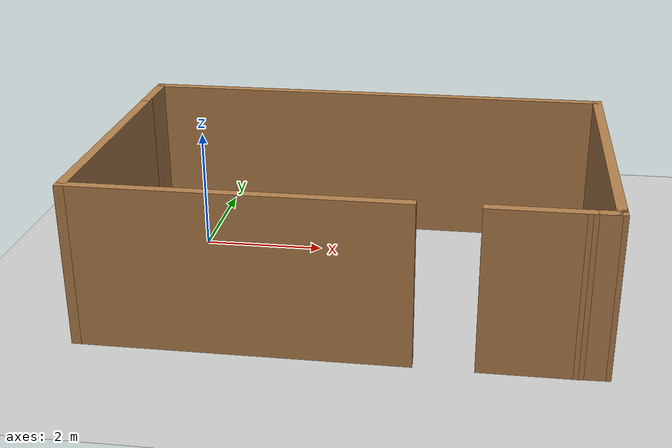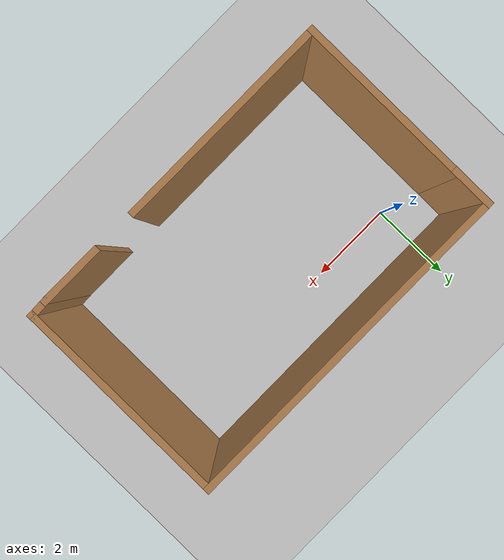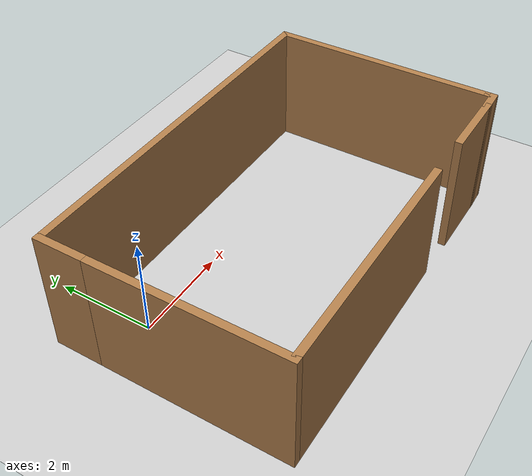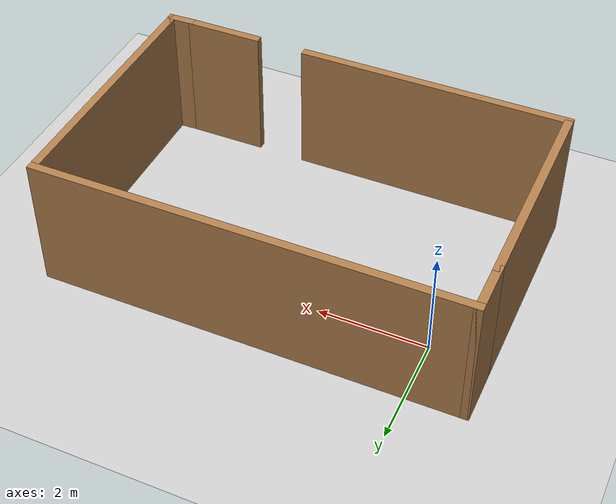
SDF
<sdf version="1.7">
 <world name="default">
  <light name="sun" type="directional">
   <pose>0 0 10 0 -0 0</pose>
   <diffuse>0.8 0.8 0.8 1</diffuse>
   <specular>0.2 0.2 0.2 1</specular>
   <attenuation>
    <range>1000</range>
    <constant>0.9</constant>
    <linear>0.01</linear>
    <quadratic>0.001</quadratic>
   </attenuation>
   <direction>-0.5 0.1 -0.9</direction>
   <spot><inner_angle>0</inner_angle><outer_angle>0</outer_angle><falloff>0</falloff></spot>
  </light>
  <model name="ground_plane">
   <static>1</static>
   <link name="link">
    <collision name="collision">
     <geometry><plane><normal>0 0 1</normal><size>100 100</size></plane></geometry>
     <surface>
      <contact><collide_bitmask>65535</collide_bitmask></contact>
      <friction><ode><mu>100</mu><mu2>50</mu2></ode></friction>
     </surface>
    </collision>
    <visual name="visual">
     <cast_shadows>0</cast_shadows>
     <geometry><plane><normal>0 0 1</normal><size>100 100</size></plane></geometry>
     <material>
      <script><uri>file://media/materials/scripts/gazebo.material</uri><name>Gazebo/Grey</name></script>
     </material>
    </visual>
   </link>
  </model>
  <gravity>0 0 -9.8</gravity>
  <magnetic_field>6e-06 2.3e-05 -4.2e-05</magnetic_field>
  <atmosphere type="adiabatic"/>
  <physics type="ode">
   <max_step_size>0.001</max_step_size>
   <real_time_factor>1</real_time_factor>
   <real_time_update_rate>1000</real_time_update_rate>
  </physics>
  <scene><ambient>0.4 0.4 0.4 1</ambient><background>0.7 0.7 0.7 1</background><shadows>1</shadows></scene>
  <audio><device>default</device></audio>
  <spherical_coordinates>
   <surface_model>EARTH_WGS84</surface_model>
   <latitude_deg>0</latitude_deg>
   <longitude_deg>0</longitude_deg>
   <elevation>0</elevation>
   <heading_deg>0</heading_deg>
  </spherical_coordinates>
  <include><uri>model://mundo_teste_01</uri></include>
 </world>
</sdf>

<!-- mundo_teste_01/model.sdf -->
<sdf version='1.7'>
  <model name='mundo_teste_01'>
    <pose>2.78601 -1.25828 0 0 -0 0</pose>
    <link name='Wall_10'>
      <collision name='Wall_10_Collision'>
        <geometry>
          <box>
            <size>1.5 0.15 2.5</size>
          </box>
        </geometry>
        <pose>0 0 1.25 0 -0 0</pose>
      </collision>
      <visual name='Wall_10_Visual'>
        <pose>0 0 1.25 0 -0 0</pose>
        <geometry>
          <box>
            <size>1.5 0.15 2.5</size>
          </box>
        </geometry>
        <material>
          <script>
            <uri>file://media/materials/scripts/gazebo.material</uri>
            <name>Gazebo/Wood</name>
          </script>
          <ambient>1 1 1 1</ambient>
        </material>
        <meta>
          <layer>0</layer>
        </meta>
      </visual>
      <pose>2.75046 -2.35533 0 0 -0 0</pose>
    </link>
    <link name='Wall_13'>
      <collision name='Wall_13_Collision'>
        <geometry>
          <box>
            <size>1 0.15 2.5</size>
          </box>
        </geometry>
        <pose>0 0 1.25 0 -0 0</pose>
      </collision>
      <visual name='Wall_13_Visual'>
        <pose>0 0 1.25 0 -0 0</pose>
        <geometry>
          <box>
            <size>1 0.15 2.5</size>
          </box>
        </geometry>
        <material>
          <script>
            <uri>file://media/materials/scripts/gazebo.material</uri>
            <name>Gazebo/Wood</name>
          </script>
          <ambient>1 1 1 1</ambient>
        </material>
        <meta>
          <layer>0</layer>
        </meta>
      </visual>
      <pose>-3.80131 1.93295 0 0 -0 1.5708</pose>
    </link>
    <link name='Wall_14'>
      <collision name='Wall_14_Collision'>
        <geometry>
          <box>
            <size>7.75 0.15 2.5</size>
          </box>
        </geometry>
        <pose>0 0 1.25 0 -0 0</pose>
      </collision>
      <visual name='Wall_14_Visual'>
        <pose>0 0 1.25 0 -0 0</pose>
        <geometry>
          <box>
            <size>7.75 0.15 2.5</size>
          </box>
        </geometry>
        <material>
          <script>
            <uri>file://media/materials/scripts/gazebo.material</uri>
            <name>Gazebo/Wood</name>
          </script>
          <ambient>1 1 1 1</ambient>
        </material>
        <meta>
          <layer>0</layer>
        </meta>
      </visual>
      <pose>-0.001309 2.35795 0 0 -0 0</pose>
    </link>
    <link name='Wall_15'>
      <collision name='Wall_15_Collision'>
        <geometry>
          <box>
            <size>4.75 0.15 2.5</size>
          </box>
        </geometry>
        <pose>0 0 1.25 0 -0 0</pose>
      </collision>
      <visual name='Wall_15_Visual'>
        <pose>0 0 1.25 0 -0 0</pose>
        <geometry>
          <box>
            <size>4.75 0.15 2.5</size>
          </box>
        </geometry>
        <material>
          <script>
            <uri>file://media/materials/scripts/gazebo.material</uri>
            <name>Gazebo/Wood</name>
          </script>
          <ambient>1 1 1 1</ambient>
        </material>
        <meta>
          <layer>0</layer>
        </meta>
      </visual>
      <pose>3.79869 0.057948 0 0 -0 -1.5708</pose>
    </link>
    <link name='Wall_16'>
      <collision name='Wall_16_Collision'>
        <geometry>
          <box>
            <size>0.25 0.15 2.5</size>
          </box>
        </geometry>
        <pose>0 0 1.25 0 -0 0</pose>
      </collision>
      <visual name='Wall_16_Visual'>
        <pose>0 0 1.25 0 -0 0</pose>
        <geometry>
          <box>
            <size>0.25 0.15 2.5</size>
          </box>
        </geometry>
        <material>
          <script>
            <uri>file://media/materials/scripts/gazebo.material</uri>
            <name>Gazebo/Wood</name>
          </script>
          <ambient>1 1 1 1</ambient>
        </material>
        <meta>
          <layer>0</layer>
        </meta>
      </visual>
      <pose>3.79869 -2.29205 0 0 -0 -1.5708</pose>
    </link>
    <link name='Wall_17'>
      <collision name='Wall_17_Collision'>
        <geometry>
          <box>
            <size>0.523467 0.15 2.5</size>
          </box>
        </geometry>
        <pose>0 0 1.25 0 -0 0</pose>
      </collision>
      <visual name='Wall_17_Visual'>
        <pose>0 0 1.25 0 -0 0</pose>
        <geometry>
          <box>
            <size>0.523467 0.15 2.5</size>
          </box>
        </geometry>
        <material>
          <script>
            <uri>file://media/materials/scripts/gazebo.material</uri>
            <name>Gazebo/Wood</name>
          </script>
          <ambient>1 1 1 1</ambient>
        </material>
        <meta>
          <layer>0</layer>
        </meta>
      </visual>
      <pose>3.61207 -2.34869 0 0 -0 -3.10603</pose>
    </link>
    <link name='Wall_4'>
      <collision name='Wall_4_Collision'>
        <geometry>
          <box>
            <size>4 0.15 2.5</size>
          </box>
        </geometry>
        <pose>0 0 1.25 0 -0 0</pose>
      </collision>
      <visual name='Wall_4_Visual'>
        <pose>0 0 1.25 0 -0 0</pose>
        <geometry>
          <box>
            <size>4 0.15 2.5</size>
          </box>
        </geometry>
        <material>
          <script>
            <uri>file://media/materials/scripts/gazebo.material</uri>
            <name>Gazebo/Wood</name>
          </script>
          <ambient>1 1 1 1</ambient>
        </material>
        <meta>
          <layer>0</layer>
        </meta>
      </visual>
      <pose>-3.80131 -0.417052 0 0 -0 -1.5708</pose>
    </link>
    <link name='Wall_5'>
      <collision name='Wall_5_Collision'>
        <geometry>
          <box>
            <size>5 0.15 2.5</size>
          </box>
        </geometry>
        <pose>0 0 1.25 0 -0 0</pose>
      </collision>
      <visual name='Wall_5_Visual'>
        <pose>0 0 1.25 0 -0 0</pose>
        <geometry>
          <box>
            <size>5 0.15 2.5</size>
          </box>
        </geometry>
        <material>
          <script>
            <uri>file://media/materials/scripts/gazebo.material</uri>
            <name>Gazebo/Wood</name>
          </script>
          <ambient>1 1 1 1</ambient>
        </material>
        <meta>
          <layer>0</layer>
        </meta>
      </visual>
      <pose>-1.37631 -2.34205 0 0 -0 0</pose>
    </link>
    <static>1</static>
  </model>
</sdf>
